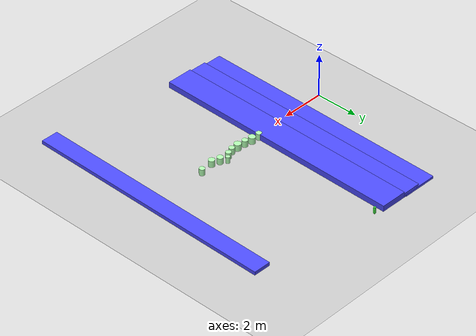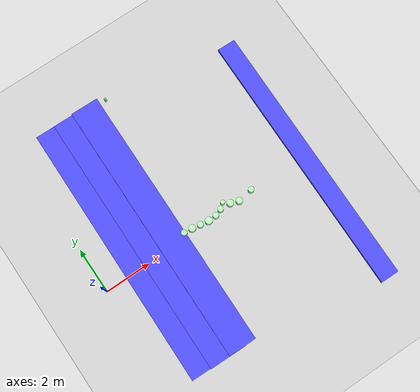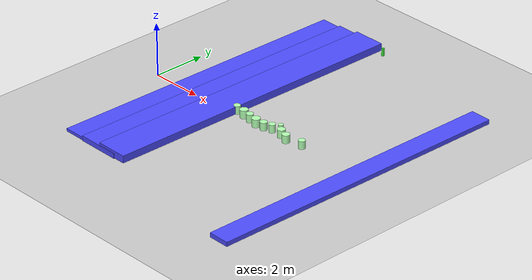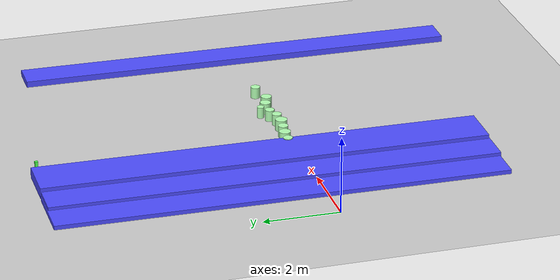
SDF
<sdf version="1.7">
 <world name="default">
  <model name="ground_plane">
   <static>1</static>
   <link name="link">
    <collision name="collision">
     <geometry><plane><normal>0 0 1</normal><size>100 100</size></plane></geometry>
     <surface><friction><ode><mu>100</mu><mu2>50</mu2></ode></friction></surface>
    </collision>
    <visual name="visual">
     <cast_shadows>0</cast_shadows>
     <geometry><plane><normal>0 0 1</normal><size>100 100</size></plane></geometry>
     <material>
      <script><uri>file://media/materials/scripts/gazebo.material</uri><name>Gazebo/Grey</name></script>
     </material>
    </visual>
   </link>
  </model>
  <model name="ban_400_80_30_clone">
   <link name="link">
    <inertial>
     <mass>1</mass>
     <inertia>
      <ixx>0.166667</ixx>
      <ixy>0</ixy>
      <ixz>0</ixz>
      <iyy>0.166667</iyy>
      <iyz>0</iyz>
      <izz>0.166667</izz>
     </inertia>
    </inertial>
    <visual name="visual">
     <geometry><box><size>11.7457 0.8 0.3</size></box></geometry>
     <material>
      <script><name>Gazebo/Grey</name><uri>file://media/materials/scripts/gazebo.material</uri></script>
      <shader type="pixel"><normal_map>__default__</normal_map></shader>
      <ambient>0.3 0.3 1 1</ambient>
      <diffuse>0.7 0.7 0.7 1</diffuse>
      <specular>0.01 0.01 0.01 1</specular>
      <emissive>0 0 0 1</emissive>
     </material>
    </visual>
    <collision name="collision">
     <geometry><box><size>11.7457 0.8 0.3</size></box></geometry>
     <surface>
      <friction>
       <ode><mu>1</mu><mu2>1</mu2><fdir1>0 0 0</fdir1><slip1>0</slip1><slip2>0</slip2></ode>
       <torsional>
        <coefficient>1</coefficient>
        <patch_radius>0</patch_radius>
        <surface_radius>0</surface_radius>
        <use_patch_radius>1</use_patch_radius>
        <ode><slip>0</slip></ode>
       </torsional>
      </friction>
      <bounce><restitution_coefficient>0</restitution_coefficient><threshold>1e+06</threshold></bounce>
      <contact>
       <collide_without_contact>0</collide_without_contact>
       <collide_without_contact_bitmask>1</collide_without_contact_bitmask>
       <collide_bitmask>1</collide_bitmask>
       <ode>
        <soft_cfm>0</soft_cfm>
        <soft_erp>0.2</soft_erp>
        <kp>1e+13</kp>
        <kd>1</kd>
        <max_vel>0.01</max_vel>
        <min_depth>0</min_depth>
       </ode>
       <bullet>
        <split_impulse>1</split_impulse>
        <split_impulse_penetration_threshold>-0.01</split_impulse_penetration_threshold>
        <soft_cfm>0</soft_cfm>
        <soft_erp>0.2</soft_erp>
        <kp>1e+13</kp>
        <kd>1</kd>
       </bullet>
      </contact>
     </surface>
    </collision>
   </link>
   <static>1</static>
   <pose>9.68721 0.016567 0 0 -0 1.55763</pose>
  </model>
  <model name="mhz_8_30_clone">
   <link name="link">
    <inertial>
     <mass>1</mass>
     <inertia>
      <ixx>0.166667</ixx>
      <ixy>0</ixy>
      <ixz>0</ixz>
      <iyy>0.166667</iyy>
      <iyz>0</iyz>
      <izz>0.166667</izz>
     </inertia>
    </inertial>
    <visual name="visual">
     <geometry><box><size>0.08 0.08 0.3</size></box></geometry>
     <material>
      <script><name>Gazebo/Grey</name><uri>file://media/materials/scripts/gazebo.material</uri></script>
      <shader type="pixel"><normal_map>__default__</normal_map></shader>
      <ambient>0.3 1 0.3 1</ambient>
      <diffuse>0.7 0.7 0.7 1</diffuse>
      <specular>0.01 0.01 0.01 1</specular>
      <emissive>0 0 0 1</emissive>
     </material>
    </visual>
    <collision name="collision">
     <geometry><box><size>0.08 0.08 0.3</size></box></geometry>
     <surface>
      <friction>
       <ode><mu>1</mu><mu2>1</mu2><fdir1>0 0 0</fdir1><slip1>0</slip1><slip2>0</slip2></ode>
       <torsional>
        <coefficient>1</coefficient>
        <patch_radius>0</patch_radius>
        <surface_radius>0</surface_radius>
        <use_patch_radius>1</use_patch_radius>
        <ode><slip>0</slip></ode>
       </torsional>
      </friction>
      <bounce><restitution_coefficient>0</restitution_coefficient><threshold>1e+06</threshold></bounce>
      <contact>
       <collide_without_contact>0</collide_without_contact>
       <collide_without_contact_bitmask>1</collide_without_contact_bitmask>
       <collide_bitmask>1</collide_bitmask>
       <ode>
        <soft_cfm>0</soft_cfm>
        <soft_erp>0.2</soft_erp>
        <kp>1e+13</kp>
        <kd>1</kd>
        <max_vel>0.01</max_vel>
        <min_depth>0</min_depth>
       </ode>
       <bullet>
        <split_impulse>1</split_impulse>
        <split_impulse_penetration_threshold>-0.01</split_impulse_penetration_threshold>
        <soft_cfm>0</soft_cfm>
        <soft_erp>0.2</soft_erp>
        <kp>1e+13</kp>
        <kd>1</kd>
       </bullet>
      </contact>
     </surface>
    </collision>
   </link>
   <static>1</static>
   <pose>4.25594 6.71166 0.134436 0 -0 0</pose>
  </model>
  <model name="mhz_y_25_30_clone_13_clone_clone_9_clone">
   <link name="link">
    <inertial>
     <mass>1</mass>
     <inertia><ixx>0.145833</ixx><ixy>0</ixy><ixz>0</ixz><iyy>0.145833</iyy><iyz>0</iyz><izz>0.125</izz></inertia>
    </inertial>
    <visual name="visual">
     <geometry><cylinder><radius>0.125</radius><length>0.3</length></cylinder></geometry>
     <material>
      <script><name>Gazebo/Grey</name><uri>file://media/materials/scripts/gazebo.material</uri></script>
      <shader type="pixel"><normal_map>__default__</normal_map></shader>
      <ambient>0 1 0 0</ambient>
      <diffuse>0.7 1 0.7 1</diffuse>
      <specular>0.01 0.01 0.01 1</specular>
      <emissive>0 0 0 1</emissive>
     </material>
    </visual>
    <collision name="collision">
     <geometry><cylinder><radius>0.125</radius><length>0.3</length></cylinder></geometry>
     <surface>
      <friction>
       <ode><mu>1</mu><mu2>1</mu2><fdir1>0 0 0</fdir1><slip1>0</slip1><slip2>0</slip2></ode>
       <torsional>
        <coefficient>1</coefficient>
        <patch_radius>0</patch_radius>
        <surface_radius>0</surface_radius>
        <use_patch_radius>1</use_patch_radius>
        <ode><slip>0</slip></ode>
       </torsional>
      </friction>
      <bounce><restitution_coefficient>0</restitution_coefficient><threshold>1e+06</threshold></bounce>
      <contact>
       <collide_without_contact>0</collide_without_contact>
       <collide_without_contact_bitmask>1</collide_without_contact_bitmask>
       <collide_bitmask>1</collide_bitmask>
       <ode>
        <soft_cfm>0</soft_cfm>
        <soft_erp>0.2</soft_erp>
        <kp>1e+13</kp>
        <kd>1</kd>
        <max_vel>0.01</max_vel>
        <min_depth>0</min_depth>
       </ode>
       <bullet>
        <split_impulse>1</split_impulse>
        <split_impulse_penetration_threshold>-0.01</split_impulse_penetration_threshold>
        <soft_cfm>0</soft_cfm>
        <soft_erp>0.2</soft_erp>
        <kp>1e+13</kp>
        <kd>1</kd>
       </bullet>
      </contact>
     </surface>
    </collision>
   </link>
   <static>1</static>
   <pose>3.83571 0.215148 0.14679 0 -0 0</pose>
  </model>
  <model name="ban_400_80_30_clone_clone_0">
   <link name="link">
    <inertial>
     <mass>1</mass>
     <inertia>
      <ixx>0.166667</ixx>
      <ixy>0</ixy>
      <ixz>0</ixz>
      <iyy>0.166667</iyy>
      <iyz>0</iyz>
      <izz>0.166667</izz>
     </inertia>
    </inertial>
    <visual name="visual">
     <geometry><box><size>11.7457 1.62875 0.3</size></box></geometry>
     <material>
      <script><name>Gazebo/Grey</name><uri>file://media/materials/scripts/gazebo.material</uri></script>
      <shader type="pixel"><normal_map>__default__</normal_map></shader>
      <ambient>0.3 0.3 1 1</ambient>
      <diffuse>0.7 0.7 0.7 1</diffuse>
      <specular>0.01 0.01 0.01 1</specular>
      <emissive>0 0 0 1</emissive>
     </material>
    </visual>
    <collision name="collision">
     <geometry><box><size>11.7457 1.62875 0.3</size></box></geometry>
     <surface>
      <friction>
       <ode><mu>1</mu><mu2>1</mu2><fdir1>0 0 0</fdir1><slip1>0</slip1><slip2>0</slip2></ode>
       <torsional>
        <coefficient>1</coefficient>
        <patch_radius>0</patch_radius>
        <surface_radius>0</surface_radius>
        <use_patch_radius>1</use_patch_radius>
        <ode><slip>0</slip></ode>
       </torsional>
      </friction>
      <bounce><restitution_coefficient>0</restitution_coefficient><threshold>1e+06</threshold></bounce>
      <contact>
       <collide_without_contact>0</collide_without_contact>
       <collide_without_contact_bitmask>1</collide_without_contact_bitmask>
       <collide_bitmask>1</collide_bitmask>
       <ode>
        <soft_cfm>0</soft_cfm>
        <soft_erp>0.2</soft_erp>
        <kp>1e+13</kp>
        <kd>1</kd>
        <max_vel>0.01</max_vel>
        <min_depth>0</min_depth>
       </ode>
       <bullet>
        <split_impulse>1</split_impulse>
        <split_impulse_penetration_threshold>-0.01</split_impulse_penetration_threshold>
        <soft_cfm>0</soft_cfm>
        <soft_erp>0.2</soft_erp>
        <kp>1e+13</kp>
        <kd>1</kd>
       </bullet>
      </contact>
     </surface>
    </collision>
   </link>
   <static>1</static>
   <pose>1.76092 1.07624 -0.056416 0 -0 1.55763</pose>
  </model>
  <model name="ban_400_80_30_clone_clone_0_clone">
   <link name="link">
    <inertial>
     <mass>1</mass>
     <inertia>
      <ixx>0.166667</ixx>
      <ixy>0</ixy>
      <ixz>0</ixz>
      <iyy>0.166667</iyy>
      <iyz>0</iyz>
      <izz>0.166667</izz>
     </inertia>
    </inertial>
    <visual name="visual">
     <geometry><box><size>11.7457 1.62875 0.3</size></box></geometry>
     <material>
      <script><name>Gazebo/Grey</name><uri>file://media/materials/scripts/gazebo.material</uri></script>
      <shader type="pixel"><normal_map>__default__</normal_map></shader>
      <ambient>0.3 0.3 1 1</ambient>
      <diffuse>0.7 0.7 0.7 1</diffuse>
      <specular>0.01 0.01 0.01 1</specular>
      <emissive>0 0 0 1</emissive>
     </material>
    </visual>
    <collision name="collision">
     <geometry><box><size>11.7457 1.62875 0.3</size></box></geometry>
     <surface>
      <friction>
       <ode><mu>1</mu><mu2>1</mu2><fdir1>0 0 0</fdir1><slip1>0</slip1><slip2>0</slip2></ode>
       <torsional>
        <coefficient>1</coefficient>
        <patch_radius>0</patch_radius>
        <surface_radius>0</surface_radius>
        <use_patch_radius>1</use_patch_radius>
        <ode><slip>0</slip></ode>
       </torsional>
      </friction>
      <bounce><restitution_coefficient>0</restitution_coefficient><threshold>1e+06</threshold></bounce>
      <contact>
       <collide_without_contact>0</collide_without_contact>
       <collide_without_contact_bitmask>1</collide_without_contact_bitmask>
       <collide_bitmask>1</collide_bitmask>
       <ode>
        <soft_cfm>0</soft_cfm>
        <soft_erp>0.2</soft_erp>
        <kp>1e+13</kp>
        <kd>1</kd>
        <max_vel>0.01</max_vel>
        <min_depth>0</min_depth>
       </ode>
       <bullet>
        <split_impulse>1</split_impulse>
        <split_impulse_penetration_threshold>-0.01</split_impulse_penetration_threshold>
        <soft_cfm>0</soft_cfm>
        <soft_erp>0.2</soft_erp>
        <kp>1e+13</kp>
        <kd>1</kd>
       </bullet>
      </contact>
     </surface>
    </collision>
   </link>
   <static>1</static>
   <pose>2.6092 1.04109 0.026784 0 -0 1.55763</pose>
  </model>
  <model name="ban_400_80_30_clone_clone_0_clone_clone">
   <link name="link">
    <inertial>
     <mass>1</mass>
     <inertia>
      <ixx>0.166667</ixx>
      <ixy>0</ixy>
      <ixz>0</ixz>
      <iyy>0.166667</iyy>
      <iyz>0</iyz>
      <izz>0.166667</izz>
     </inertia>
    </inertial>
    <visual name="visual">
     <geometry><box><size>11.7457 1.22321 0.274752</size></box></geometry>
     <material>
      <script><name>Gazebo/Grey</name><uri>file://media/materials/scripts/gazebo.material</uri></script>
      <shader type="pixel"><normal_map>__default__</normal_map></shader>
      <ambient>0.3 0.3 1 1</ambient>
      <diffuse>0.7 0.7 0.7 1</diffuse>
      <specular>0.01 0.01 0.01 1</specular>
      <emissive>0 0 0 1</emissive>
     </material>
    </visual>
    <collision name="collision">
     <geometry><box><size>11.7457 1.22321 0.274752</size></box></geometry>
     <surface>
      <friction>
       <ode><mu>1</mu><mu2>1</mu2><fdir1>0 0 0</fdir1><slip1>0</slip1><slip2>0</slip2></ode>
       <torsional>
        <coefficient>1</coefficient>
        <patch_radius>0</patch_radius>
        <surface_radius>0</surface_radius>
        <use_patch_radius>1</use_patch_radius>
        <ode><slip>0</slip></ode>
       </torsional>
      </friction>
      <bounce><restitution_coefficient>0</restitution_coefficient><threshold>1e+06</threshold></bounce>
      <contact>
       <collide_without_contact>0</collide_without_contact>
       <collide_without_contact_bitmask>1</collide_without_contact_bitmask>
       <collide_bitmask>1</collide_bitmask>
       <ode>
        <soft_cfm>0</soft_cfm>
        <soft_erp>0.2</soft_erp>
        <kp>1e+13</kp>
        <kd>1</kd>
        <max_vel>0.01</max_vel>
        <min_depth>0</min_depth>
       </ode>
       <bullet>
        <split_impulse>1</split_impulse>
        <split_impulse_penetration_threshold>-0.01</split_impulse_penetration_threshold>
        <soft_cfm>0</soft_cfm>
        <soft_erp>0.2</soft_erp>
        <kp>1e+13</kp>
        <kd>1</kd>
       </bullet>
      </contact>
     </surface>
    </collision>
   </link>
   <static>1</static>
   <pose>3.28137 1.05048 0.138376 0 -0 1.55763</pose>
  </model>
  <model name="mhz_y_25_30_clone_13_clone_clone_9_clone_0_clone_clone">
   <link name="link">
    <inertial>
     <mass>1</mass>
     <inertia><ixx>0.145833</ixx><ixy>0</ixy><ixz>0</ixz><iyy>0.145833</iyy><iyz>0</iyz><izz>0.125</izz></inertia>
    </inertial>
    <visual name="visual">
     <geometry><cylinder><radius>0.15149</radius><length>0.3</length></cylinder></geometry>
     <material>
      <script><name>Gazebo/Grey</name><uri>file://media/materials/scripts/gazebo.material</uri></script>
      <shader type="pixel"><normal_map>__default__</normal_map></shader>
      <ambient>0 1 0 0</ambient>
      <diffuse>0.7 1 0.7 1</diffuse>
      <specular>0.01 0.01 0.01 1</specular>
      <emissive>0 0 0 1</emissive>
     </material>
    </visual>
    <collision name="collision">
     <geometry><cylinder><radius>0.15149</radius><length>0.3</length></cylinder></geometry>
     <surface>
      <friction>
       <ode><mu>1</mu><mu2>1</mu2><fdir1>0 0 0</fdir1><slip1>0</slip1><slip2>0</slip2></ode>
       <torsional>
        <coefficient>1</coefficient>
        <patch_radius>0</patch_radius>
        <surface_radius>0</surface_radius>
        <use_patch_radius>1</use_patch_radius>
        <ode><slip>0</slip></ode>
       </torsional>
      </friction>
      <bounce><restitution_coefficient>0</restitution_coefficient><threshold>1e+06</threshold></bounce>
      <contact>
       <collide_without_contact>0</collide_without_contact>
       <collide_without_contact_bitmask>1</collide_without_contact_bitmask>
       <collide_bitmask>1</collide_bitmask>
       <ode>
        <soft_cfm>0</soft_cfm>
        <soft_erp>0.2</soft_erp>
        <kp>1e+13</kp>
        <kd>1</kd>
        <max_vel>0.01</max_vel>
        <min_depth>0</min_depth>
       </ode>
       <bullet>
        <split_impulse>1</split_impulse>
        <split_impulse_penetration_threshold>-0.01</split_impulse_penetration_threshold>
        <soft_cfm>0</soft_cfm>
        <soft_erp>0.2</soft_erp>
        <kp>1e+13</kp>
        <kd>1</kd>
       </bullet>
      </contact>
     </surface>
    </collision>
   </link>
   <static>1</static>
   <pose>4.20792 0.187283 0.14679 0 -0 0</pose>
  </model>
  <model name="mhz_y_25_30_clone_13_clone_clone_9_clone_0_clone_clone_0_clone">
   <link name="link">
    <inertial>
     <mass>1</mass>
     <inertia><ixx>0.145833</ixx><ixy>0</ixy><ixz>0</ixz><iyy>0.145833</iyy><iyz>0</iyz><izz>0.125</izz></inertia>
    </inertial>
    <visual name="visual">
     <geometry><cylinder><radius>0.132128</radius><length>0.3</length></cylinder></geometry>
     <material>
      <script><name>Gazebo/Grey</name><uri>file://media/materials/scripts/gazebo.material</uri></script>
      <shader type="pixel"><normal_map>__default__</normal_map></shader>
      <ambient>0 1 0 0</ambient>
      <diffuse>0.7 1 0.7 1</diffuse>
      <specular>0.01 0.01 0.01 1</specular>
      <emissive>0 0 0 1</emissive>
     </material>
    </visual>
    <collision name="collision">
     <geometry><cylinder><radius>0.132128</radius><length>0.3</length></cylinder></geometry>
     <surface>
      <friction>
       <ode><mu>1</mu><mu2>1</mu2><fdir1>0 0 0</fdir1><slip1>0</slip1><slip2>0</slip2></ode>
       <torsional>
        <coefficient>1</coefficient>
        <patch_radius>0</patch_radius>
        <surface_radius>0</surface_radius>
        <use_patch_radius>1</use_patch_radius>
        <ode><slip>0</slip></ode>
       </torsional>
      </friction>
      <bounce><restitution_coefficient>0</restitution_coefficient><threshold>1e+06</threshold></bounce>
      <contact>
       <collide_without_contact>0</collide_without_contact>
       <collide_without_contact_bitmask>1</collide_without_contact_bitmask>
       <collide_bitmask>1</collide_bitmask>
       <ode>
        <soft_cfm>0</soft_cfm>
        <soft_erp>0.2</soft_erp>
        <kp>1e+13</kp>
        <kd>1</kd>
        <max_vel>0.01</max_vel>
        <min_depth>0</min_depth>
       </ode>
       <bullet>
        <split_impulse>1</split_impulse>
        <split_impulse_penetration_threshold>-0.01</split_impulse_penetration_threshold>
        <soft_cfm>0</soft_cfm>
        <soft_erp>0.2</soft_erp>
        <kp>1e+13</kp>
        <kd>1</kd>
       </bullet>
      </contact>
     </surface>
    </collision>
   </link>
   <static>1</static>
   <pose>4.56179 0.130108 0.14679 0 -0 0</pose>
  </model>
  <model name="mhz_y_25_30_clone_13_clone_clone_9_clone_0_clone_clone_0_clone_clone">
   <link name="link">
    <inertial>
     <mass>1</mass>
     <inertia><ixx>0.145833</ixx><ixy>0</ixy><ixz>0</ixz><iyy>0.145833</iyy><iyz>0</iyz><izz>0.125</izz></inertia>
    </inertial>
    <visual name="visual">
     <geometry><cylinder><radius>0.156911</radius><length>0.3</length></cylinder></geometry>
     <material>
      <script><name>Gazebo/Grey</name><uri>file://media/materials/scripts/gazebo.material</uri></script>
      <shader type="pixel"><normal_map>__default__</normal_map></shader>
      <ambient>0 1 0 0</ambient>
      <diffuse>0.7 1 0.7 1</diffuse>
      <specular>0.01 0.01 0.01 1</specular>
      <emissive>0 0 0 1</emissive>
     </material>
    </visual>
    <collision name="collision">
     <geometry><cylinder><radius>0.156911</radius><length>0.3</length></cylinder></geometry>
     <surface>
      <friction>
       <ode><mu>1</mu><mu2>1</mu2><fdir1>0 0 0</fdir1><slip1>0</slip1><slip2>0</slip2></ode>
       <torsional>
        <coefficient>1</coefficient>
        <patch_radius>0</patch_radius>
        <surface_radius>0</surface_radius>
        <use_patch_radius>1</use_patch_radius>
        <ode><slip>0</slip></ode>
       </torsional>
      </friction>
      <bounce><restitution_coefficient>0</restitution_coefficient><threshold>1e+06</threshold></bounce>
      <contact>
       <collide_without_contact>0</collide_without_contact>
       <collide_without_contact_bitmask>1</collide_without_contact_bitmask>
       <collide_bitmask>1</collide_bitmask>
       <ode>
        <soft_cfm>0</soft_cfm>
        <soft_erp>0.2</soft_erp>
        <kp>1e+13</kp>
        <kd>1</kd>
        <max_vel>0.01</max_vel>
        <min_depth>0</min_depth>
       </ode>
       <bullet>
        <split_impulse>1</split_impulse>
        <split_impulse_penetration_threshold>-0.01</split_impulse_penetration_threshold>
        <soft_cfm>0</soft_cfm>
        <soft_erp>0.2</soft_erp>
        <kp>1e+13</kp>
        <kd>1</kd>
       </bullet>
      </contact>
     </surface>
    </collision>
   </link>
   <static>1</static>
   <pose>4.92972 0.072782 0.14679 0 -0 0</pose>
  </model>
  <model name="mhz_y_25_30_clone_13_clone_clone_9_clone_0_clone_clone_0_clone_0_clone_clone">
   <link name="link">
    <inertial>
     <mass>1</mass>
     <inertia><ixx>0.145833</ixx><ixy>0</ixy><ixz>0</ixz><iyy>0.145833</iyy><iyz>0</iyz><izz>0.125</izz></inertia>
    </inertial>
    <visual name="visual">
     <geometry><cylinder><radius>0.128775</radius><length>0.3</length></cylinder></geometry>
     <material>
      <script><name>Gazebo/Grey</name><uri>file://media/materials/scripts/gazebo.material</uri></script>
      <shader type="pixel"><normal_map>__default__</normal_map></shader>
      <ambient>0 1 0 0</ambient>
      <diffuse>0.7 1 0.7 1</diffuse>
      <specular>0.01 0.01 0.01 1</specular>
      <emissive>0 0 0 1</emissive>
     </material>
    </visual>
    <collision name="collision">
     <geometry><cylinder><radius>0.128775</radius><length>0.3</length></cylinder></geometry>
     <surface>
      <friction>
       <ode><mu>1</mu><mu2>1</mu2><fdir1>0 0 0</fdir1><slip1>0</slip1><slip2>0</slip2></ode>
       <torsional>
        <coefficient>1</coefficient>
        <patch_radius>0</patch_radius>
        <surface_radius>0</surface_radius>
        <use_patch_radius>1</use_patch_radius>
        <ode><slip>0</slip></ode>
       </torsional>
      </friction>
      <bounce><restitution_coefficient>0</restitution_coefficient><threshold>1e+06</threshold></bounce>
      <contact>
       <collide_without_contact>0</collide_without_contact>
       <collide_without_contact_bitmask>1</collide_without_contact_bitmask>
       <collide_bitmask>1</collide_bitmask>
       <ode>
        <soft_cfm>0</soft_cfm>
        <soft_erp>0.2</soft_erp>
        <kp>1e+13</kp>
        <kd>1</kd>
        <max_vel>0.01</max_vel>
        <min_depth>0</min_depth>
       </ode>
       <bullet>
        <split_impulse>1</split_impulse>
        <split_impulse_penetration_threshold>-0.01</split_impulse_penetration_threshold>
        <soft_cfm>0</soft_cfm>
        <soft_erp>0.2</soft_erp>
        <kp>1e+13</kp>
        <kd>1</kd>
       </bullet>
      </contact>
     </surface>
    </collision>
   </link>
   <static>1</static>
   <pose>5.28548 0.089009 0.14679 0 -0 0</pose>
  </model>
  <model name="mhz_y_25_30_clone_13_clone_clone_9_clone_0_clone_clone_0_clone_0_clone_clone_clone_clone">
   <link name="link">
    <inertial>
     <mass>1</mass>
     <inertia><ixx>0.145833</ixx><ixy>0</ixy><ixz>0</ixz><iyy>0.145833</iyy><iyz>0</iyz><izz>0.125</izz></inertia>
    </inertial>
    <visual name="visual">
     <geometry><cylinder><radius>0.125</radius><length>0.3</length></cylinder></geometry>
     <material>
      <script><name>Gazebo/Grey</name><uri>file://media/materials/scripts/gazebo.material</uri></script>
      <shader type="pixel"><normal_map>__default__</normal_map></shader>
      <ambient>0 1 0 0</ambient>
      <diffuse>0.7 1 0.7 1</diffuse>
      <specular>0.01 0.01 0.01 1</specular>
      <emissive>0 0 0 1</emissive>
     </material>
    </visual>
    <collision name="collision">
     <geometry><cylinder><radius>0.125</radius><length>0.3</length></cylinder></geometry>
     <surface>
      <friction>
       <ode><mu>1</mu><mu2>1</mu2><fdir1>0 0 0</fdir1><slip1>0</slip1><slip2>0</slip2></ode>
       <torsional>
        <coefficient>1</coefficient>
        <patch_radius>0</patch_radius>
        <surface_radius>0</surface_radius>
        <use_patch_radius>1</use_patch_radius>
        <ode><slip>0</slip></ode>
       </torsional>
      </friction>
      <bounce><restitution_coefficient>0</restitution_coefficient><threshold>1e+06</threshold></bounce>
      <contact>
       <collide_without_contact>0</collide_without_contact>
       <collide_without_contact_bitmask>1</collide_without_contact_bitmask>
       <collide_bitmask>1</collide_bitmask>
       <ode>
        <soft_cfm>0</soft_cfm>
        <soft_erp>0.2</soft_erp>
        <kp>1e+13</kp>
        <kd>1</kd>
        <max_vel>0.01</max_vel>
        <min_depth>0</min_depth>
       </ode>
       <bullet>
        <split_impulse>1</split_impulse>
        <split_impulse_penetration_threshold>-0.01</split_impulse_penetration_threshold>
        <soft_cfm>0</soft_cfm>
        <soft_erp>0.2</soft_erp>
        <kp>1e+13</kp>
        <kd>1</kd>
       </bullet>
      </contact>
     </surface>
    </collision>
   </link>
   <static>1</static>
   <pose>5.58686 0.195523 0.14679 0 -0 0</pose>
  </model>
  <model name="mhz_y_25_30_clone_13_clone_clone_9_clone_0_clone_clone_0_clone_0_clone_clone_clone_clone_clone_clone">
   <link name="link">
    <inertial>
     <mass>1</mass>
     <inertia><ixx>0.145833</ixx><ixy>0</ixy><ixz>0</ixz><iyy>0.145833</iyy><iyz>0</iyz><izz>0.125</izz></inertia>
    </inertial>
    <visual name="visual">
     <geometry><cylinder><radius>0.142831</radius><length>0.3</length></cylinder></geometry>
     <material>
      <script><name>Gazebo/Grey</name><uri>file://media/materials/scripts/gazebo.material</uri></script>
      <shader type="pixel"><normal_map>__default__</normal_map></shader>
      <ambient>0 1 0 0</ambient>
      <diffuse>0.7 1 0.7 1</diffuse>
      <specular>0.01 0.01 0.01 1</specular>
      <emissive>0 0 0 1</emissive>
     </material>
    </visual>
    <collision name="collision">
     <geometry><cylinder><radius>0.142831</radius><length>0.3</length></cylinder></geometry>
     <surface>
      <friction>
       <ode><mu>1</mu><mu2>1</mu2><fdir1>0 0 0</fdir1><slip1>0</slip1><slip2>0</slip2></ode>
       <torsional>
        <coefficient>1</coefficient>
        <patch_radius>0</patch_radius>
        <surface_radius>0</surface_radius>
        <use_patch_radius>1</use_patch_radius>
        <ode><slip>0</slip></ode>
       </torsional>
      </friction>
      <bounce><restitution_coefficient>0</restitution_coefficient><threshold>1e+06</threshold></bounce>
      <contact>
       <collide_without_contact>0</collide_without_contact>
       <collide_without_contact_bitmask>1</collide_without_contact_bitmask>
       <collide_bitmask>1</collide_bitmask>
       <ode>
        <soft_cfm>0</soft_cfm>
        <soft_erp>0.2</soft_erp>
        <kp>1e+13</kp>
        <kd>1</kd>
        <max_vel>0.01</max_vel>
        <min_depth>0</min_depth>
       </ode>
       <bullet>
        <split_impulse>1</split_impulse>
        <split_impulse_penetration_threshold>-0.01</split_impulse_penetration_threshold>
        <soft_cfm>0</soft_cfm>
        <soft_erp>0.2</soft_erp>
        <kp>1e+13</kp>
        <kd>1</kd>
       </bullet>
      </contact>
     </surface>
    </collision>
   </link>
   <static>1</static>
   <pose>6.05209 0.180948 0.14679 0 -0 0</pose>
  </model>
  <model name="mhz_y_25_30_clone_13_clone_clone_9_clone_0_clone_clone_0_clone_0_clone_clone_clone_clone_clone_clone_0_clone">
   <link name="link">
    <inertial>
     <mass>1</mass>
     <inertia><ixx>0.145833</ixx><ixy>0</ixy><ixz>0</ixz><iyy>0.145833</iyy><iyz>0</iyz><izz>0.125</izz></inertia>
    </inertial>
    <visual name="visual">
     <geometry><cylinder><radius>0.142272</radius><length>0.3</length></cylinder></geometry>
     <material>
      <script><name>Gazebo/Grey</name><uri>file://media/materials/scripts/gazebo.material</uri></script>
      <shader type="pixel"><normal_map>__default__</normal_map></shader>
      <ambient>0 1 0 0</ambient>
      <diffuse>0.7 1 0.7 1</diffuse>
      <specular>0.01 0.01 0.01 1</specular>
      <emissive>0 0 0 1</emissive>
     </material>
    </visual>
    <collision name="collision">
     <geometry><cylinder><radius>0.142272</radius><length>0.3</length></cylinder></geometry>
     <surface>
      <friction>
       <ode><mu>1</mu><mu2>1</mu2><fdir1>0 0 0</fdir1><slip1>0</slip1><slip2>0</slip2></ode>
       <torsional>
        <coefficient>1</coefficient>
        <patch_radius>0</patch_radius>
        <surface_radius>0</surface_radius>
        <use_patch_radius>1</use_patch_radius>
        <ode><slip>0</slip></ode>
       </torsional>
      </friction>
      <bounce><restitution_coefficient>0</restitution_coefficient><threshold>1e+06</threshold></bounce>
      <contact>
       <collide_without_contact>0</collide_without_contact>
       <collide_without_contact_bitmask>1</collide_without_contact_bitmask>
       <collide_bitmask>1</collide_bitmask>
       <ode>
        <soft_cfm>0</soft_cfm>
        <soft_erp>0.2</soft_erp>
        <kp>1e+13</kp>
        <kd>1</kd>
        <max_vel>0.01</max_vel>
        <min_depth>0</min_depth>
       </ode>
       <bullet>
        <split_impulse>1</split_impulse>
        <split_impulse_penetration_threshold>-0.01</split_impulse_penetration_threshold>
        <soft_cfm>0</soft_cfm>
        <soft_erp>0.2</soft_erp>
        <kp>1e+13</kp>
        <kd>1</kd>
       </bullet>
      </contact>
     </surface>
    </collision>
   </link>
   <static>1</static>
   <pose>6.40646 0.053247 0.14679 0 -0 0</pose>
  </model>
  <model name="mhz_y_25_30_clone_13_clone_clone_9_clone_0_clone_clone_0_clone_0_clone_clone_clone_clone_clone_clone_0_clone_1_clone">
   <link name="link">
    <inertial>
     <mass>1</mass>
     <inertia><ixx>0.145833</ixx><ixy>0</ixy><ixz>0</ixz><iyy>0.145833</iyy><iyz>0</iyz><izz>0.125</izz></inertia>
    </inertial>
    <visual name="visual">
     <geometry><cylinder><radius>0.125</radius><length>0.3</length></cylinder></geometry>
     <material>
      <script><name>Gazebo/Grey</name><uri>file://media/materials/scripts/gazebo.material</uri></script>
      <shader type="pixel"><normal_map>__default__</normal_map></shader>
      <ambient>0 1 0 0</ambient>
      <diffuse>0.7 1 0.7 1</diffuse>
      <specular>0.01 0.01 0.01 1</specular>
      <emissive>0 0 0 1</emissive>
     </material>
    </visual>
    <collision name="collision">
     <geometry><cylinder><radius>0.125</radius><length>0.3</length></cylinder></geometry>
     <surface>
      <friction>
       <ode><mu>1</mu><mu2>1</mu2><fdir1>0 0 0</fdir1><slip1>0</slip1><slip2>0</slip2></ode>
       <torsional>
        <coefficient>1</coefficient>
        <patch_radius>0</patch_radius>
        <surface_radius>0</surface_radius>
        <use_patch_radius>1</use_patch_radius>
        <ode><slip>0</slip></ode>
       </torsional>
      </friction>
      <bounce><restitution_coefficient>0</restitution_coefficient><threshold>1e+06</threshold></bounce>
      <contact>
       <collide_without_contact>0</collide_without_contact>
       <collide_without_contact_bitmask>1</collide_without_contact_bitmask>
       <collide_bitmask>1</collide_bitmask>
       <ode>
        <soft_cfm>0</soft_cfm>
        <soft_erp>0.2</soft_erp>
        <kp>1e+13</kp>
        <kd>1</kd>
        <max_vel>0.01</max_vel>
        <min_depth>0</min_depth>
       </ode>
       <bullet>
        <split_impulse>1</split_impulse>
        <split_impulse_penetration_threshold>-0.01</split_impulse_penetration_threshold>
        <soft_cfm>0</soft_cfm>
        <soft_erp>0.2</soft_erp>
        <kp>1e+13</kp>
        <kd>1</kd>
       </bullet>
      </contact>
     </surface>
    </collision>
   </link>
   <static>1</static>
   <pose>7.06633 0.162939 0.14679 0 -0 0</pose>
  </model>
  <model name="mhz_y_25_30_clone_13_clone_clone_9_clone_0_clone_clone_0_clone_clone_0_clone">
   <link name="link">
    <inertial>
     <mass>1</mass>
     <inertia><ixx>0.145833</ixx><ixy>0</ixy><ixz>0</ixz><iyy>0.145833</iyy><iyz>0</iyz><izz>0.125</izz></inertia>
    </inertial>
    <visual name="visual">
     <geometry><cylinder><radius>0.0951713</radius><length>0.3</length></cylinder></geometry>
     <material>
      <script><name>Gazebo/Grey</name><uri>file://media/materials/scripts/gazebo.material</uri></script>
      <shader type="pixel"><normal_map>__default__</normal_map></shader>
      <ambient>0 1 0 0</ambient>
      <diffuse>0.7 1 0.7 1</diffuse>
      <specular>0.01 0.01 0.01 1</specular>
      <emissive>0 0 0 1</emissive>
     </material>
    </visual>
    <collision name="collision">
     <geometry><cylinder><radius>0.0951713</radius><length>0.3</length></cylinder></geometry>
     <surface>
      <friction>
       <ode><mu>1</mu><mu2>1</mu2><fdir1>0 0 0</fdir1><slip1>0</slip1><slip2>0</slip2></ode>
       <torsional>
        <coefficient>1</coefficient>
        <patch_radius>0</patch_radius>
        <surface_radius>0</surface_radius>
        <use_patch_radius>1</use_patch_radius>
        <ode><slip>0</slip></ode>
       </torsional>
      </friction>
      <bounce><restitution_coefficient>0</restitution_coefficient><threshold>1e+06</threshold></bounce>
      <contact>
       <collide_without_contact>0</collide_without_contact>
       <collide_without_contact_bitmask>1</collide_without_contact_bitmask>
       <collide_bitmask>1</collide_bitmask>
       <ode>
        <soft_cfm>0</soft_cfm>
        <soft_erp>0.2</soft_erp>
        <kp>1e+13</kp>
        <kd>1</kd>
        <max_vel>0.01</max_vel>
        <min_depth>0</min_depth>
       </ode>
       <bullet>
        <split_impulse>1</split_impulse>
        <split_impulse_penetration_threshold>-0.01</split_impulse_penetration_threshold>
        <soft_cfm>0</soft_cfm>
        <soft_erp>0.2</soft_erp>
        <kp>1e+13</kp>
        <kd>1</kd>
       </bullet>
      </contact>
     </surface>
    </collision>
   </link>
   <static>1</static>
   <pose>5.81584 0.378957 0.14679 0 -0 0</pose>
  </model>
 </world>
</sdf>
